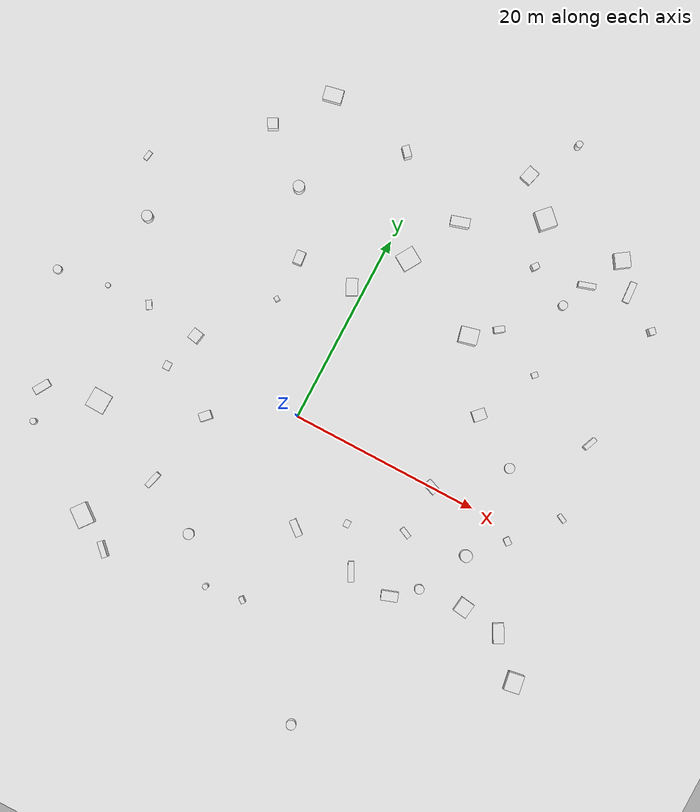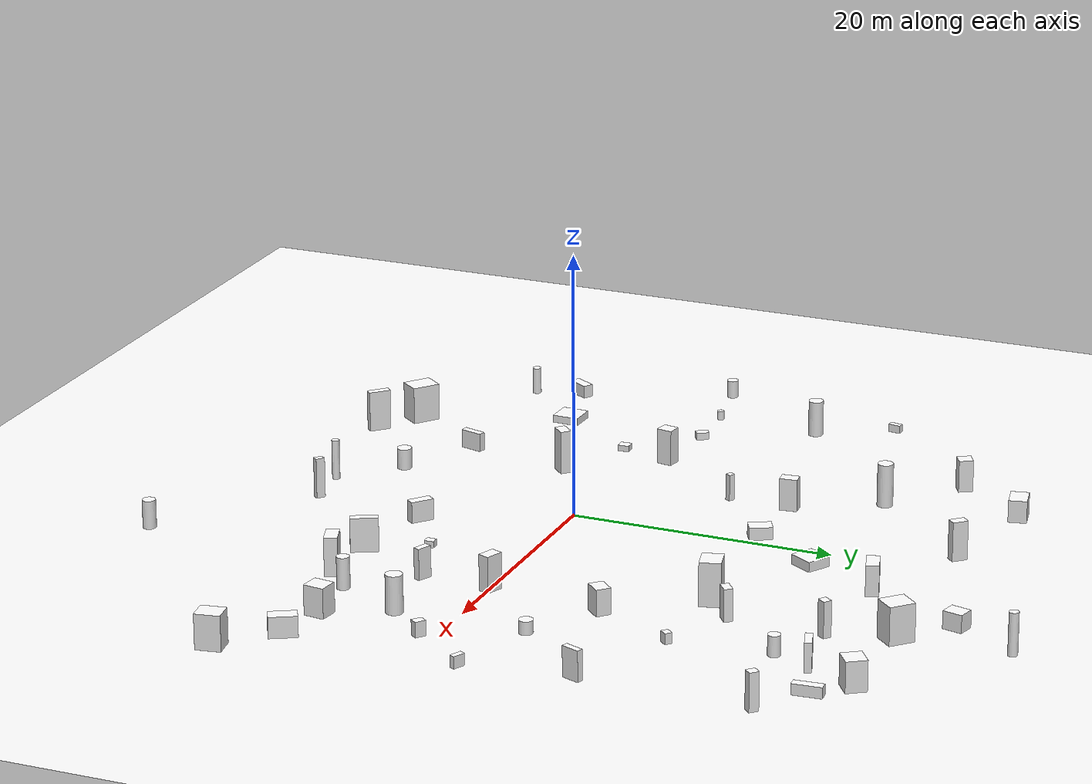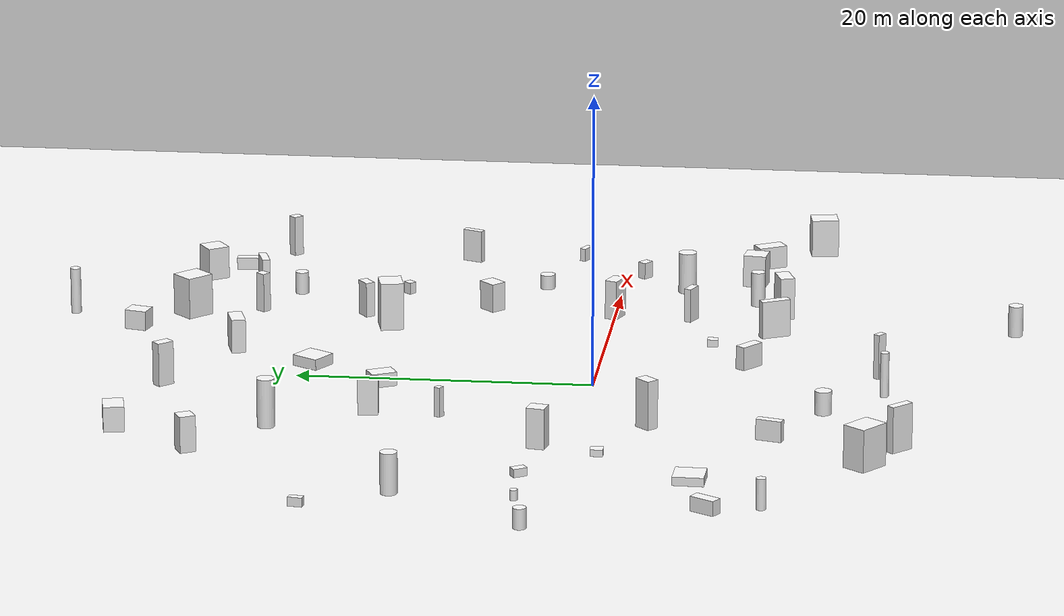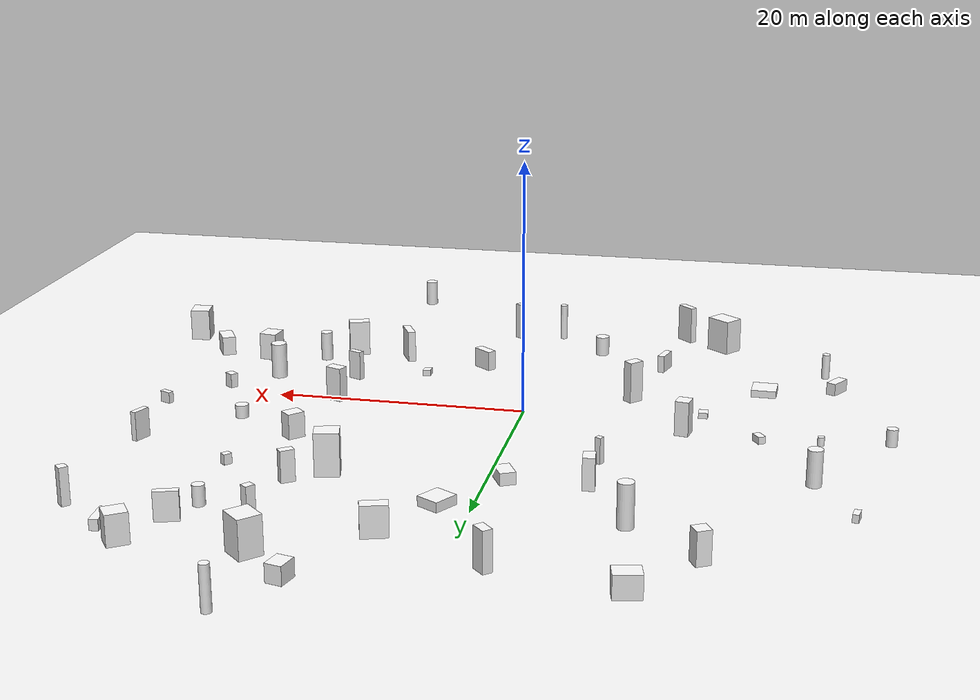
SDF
<?xml version="1.0"?>
<sdf version="1.9">
  <model name="vio_scene">
    <static>true</static>
    <link name="link">
      <visual name="ground">
        <pose>0 0 0.02 0 0 0</pose>
        <geometry><plane><normal>0 0 1</normal><size>80 80</size></plane></geometry>
        <material>
          <ambient>1 1 1 1</ambient><diffuse>1 1 1 1</diffuse><specular>0.05 0.05 0.05 1</specular>
          <pbr><metal>
            <albedo_map>model://vio_scene/materials/textures/ground.jpg</albedo_map>
            <metalness>0.0</metalness><roughness>1.0</roughness>
          </metal></pbr>
        </material>
      </visual>
      <visual name="prop_0">
        <pose>23.77 -9.15 1.16 0 0 3.01</pose>
        <geometry><box><size>1.47 1.59 2.27</size></box></geometry>
        <material>
          <ambient>1 1 1 1</ambient><diffuse>1 1 1 1</diffuse><specular>0.05 0.05 0.05 1</specular>
          <pbr><metal>
            <albedo_map>model://vio_scene/materials/textures/props.jpg</albedo_map>
            <metalness>0.0</metalness><roughness>1.0</roughness>
          </metal></pbr>
        </material>
      </visual>
      <visual name="prop_1">
        <pose>9.30 32.38 0.70 0 0 6.04</pose>
        <geometry><box><size>1.24 1.53 1.35</size></box></geometry>
        <material>
          <ambient>1 1 1 1</ambient><diffuse>1 1 1 1</diffuse><specular>0.05 0.05 0.05 1</specular>
          <pbr><metal>
            <albedo_map>model://vio_scene/materials/textures/props.jpg</albedo_map>
            <metalness>0.0</metalness><roughness>1.0</roughness>
          </metal></pbr>
        </material>
      </visual>
      <visual name="prop_2">
        <pose>15.09 -5.28 1.20 0 0 1.15</pose>
        <geometry><box><size>0.51 1.14 2.37</size></box></geometry>
        <material>
          <ambient>1 1 1 1</ambient><diffuse>1 1 1 1</diffuse><specular>0.05 0.05 0.05 1</specular>
          <pbr><metal>
            <albedo_map>model://vio_scene/materials/textures/props.jpg</albedo_map>
            <metalness>0.0</metalness><roughness>1.0</roughness>
          </metal></pbr>
        </material>
      </visual>
      <visual name="prop_3">
        <pose>-22.75 10.67 1.40 0 0 5.12</pose>
        <geometry><cylinder><radius>0.56</radius><length>2.77</length></cylinder></geometry>
        <material>
          <ambient>1 1 1 1</ambient><diffuse>1 1 1 1</diffuse><specular>0.05 0.05 0.05 1</specular>
          <pbr><metal>
            <albedo_map>model://vio_scene/materials/textures/props.jpg</albedo_map>
            <metalness>0.0</metalness><roughness>1.0</roughness>
          </metal></pbr>
        </material>
      </visual>
      <visual name="prop_4">
        <pose>2.43 19.25 0.40 0 0 5.74</pose>
        <geometry><box><size>1.84 1.98 0.75</size></box></geometry>
        <material>
          <ambient>1 1 1 1</ambient><diffuse>1 1 1 1</diffuse><specular>0.05 0.05 0.05 1</specular>
          <pbr><metal>
            <albedo_map>model://vio_scene/materials/textures/props.jpg</albedo_map>
            <metalness>0.0</metalness><roughness>1.0</roughness>
          </metal></pbr>
        </material>
      </visual>
      <visual name="prop_5">
        <pose>-7.36 9.44 1.03 0 0 5.75</pose>
        <geometry><box><size>0.48 0.45 2.02</size></box></geometry>
        <material>
          <ambient>1 1 1 1</ambient><diffuse>1 1 1 1</diffuse><specular>0.05 0.05 0.05 1</specular>
          <pbr><metal>
            <albedo_map>model://vio_scene/materials/textures/props.jpg</albedo_map>
            <metalness>0.0</metalness><roughness>1.0</roughness>
          </metal></pbr>
        </material>
      </visual>
      <visual name="prop_6">
        <pose>-14.00 -1.64 0.25 0 0 1.59</pose>
        <geometry><box><size>0.85 0.74 0.46</size></box></geometry>
        <material>
          <ambient>1 1 1 1</ambient><diffuse>1 1 1 1</diffuse><specular>0.05 0.05 0.05 1</specular>
          <pbr><metal>
            <albedo_map>model://vio_scene/materials/textures/props.jpg</albedo_map>
            <metalness>0.0</metalness><roughness>1.0</roughness>
          </metal></pbr>
        </material>
      </visual>
      <visual name="prop_7">
        <pose>13.97 -27.66 1.10 0 0 0.24</pose>
        <geometry><cylinder><radius>0.50</radius><length>2.16</length></cylinder></geometry>
        <material>
          <ambient>1 1 1 1</ambient><diffuse>1 1 1 1</diffuse><specular>0.05 0.05 0.05 1</specular>
          <pbr><metal>
            <albedo_map>model://vio_scene/materials/textures/props.jpg</albedo_map>
            <metalness>0.0</metalness><roughness>1.0</roughness>
          </metal></pbr>
        </material>
      </visual>
      <visual name="prop_8">
        <pose>28.36 3.38 0.48 0 0 4.26</pose>
        <geometry><box><size>0.44 0.96 0.91</size></box></geometry>
        <material>
          <ambient>1 1 1 1</ambient><diffuse>1 1 1 1</diffuse><specular>0.05 0.05 0.05 1</specular>
          <pbr><metal>
            <albedo_map>model://vio_scene/materials/textures/props.jpg</albedo_map>
            <metalness>0.0</metalness><roughness>1.0</roughness>
          </metal></pbr>
        </material>
      </visual>
      <visual name="prop_9">
        <pose>11.43 15.16 1.67 0 0 3.38</pose>
        <geometry><box><size>1.86 1.58 3.31</size></box></geometry>
        <material>
          <ambient>1 1 1 1</ambient><diffuse>1 1 1 1</diffuse><specular>0.05 0.05 0.05 1</specular>
          <pbr><metal>
            <albedo_map>model://vio_scene/materials/textures/props.jpg</albedo_map>
            <metalness>0.0</metalness><roughness>1.0</roughness>
          </metal></pbr>
        </material>
      </visual>
      <visual name="prop_10">
        <pose>27.27 11.31 1.17 0 0 1.20</pose>
        <geometry><box><size>1.43 0.47 2.29</size></box></geometry>
        <material>
          <ambient>1 1 1 1</ambient><diffuse>1 1 1 1</diffuse><specular>0.05 0.05 0.05 1</specular>
          <pbr><metal>
            <albedo_map>model://vio_scene/materials/textures/props.jpg</albedo_map>
            <metalness>0.0</metalness><roughness>1.0</roughness>
          </metal></pbr>
        </material>
      </visual>
      <visual name="prop_11">
        <pose>21.53 -4.47 1.46 0 0 6.03</pose>
        <geometry><cylinder><radius>0.63</radius><length>2.89</length></cylinder></geometry>
        <material>
          <ambient>1 1 1 1</ambient><diffuse>1 1 1 1</diffuse><specular>0.05 0.05 0.05 1</specular>
          <pbr><metal>
            <albedo_map>model://vio_scene/materials/textures/props.jpg</albedo_map>
            <metalness>0.0</metalness><roughness>1.0</roughness>
          </metal></pbr>
        </material>
      </visual>
      <visual name="prop_12">
        <pose>-18.53 2.91 0.30 0 0 2.13</pose>
        <geometry><box><size>0.97 0.60 0.56</size></box></geometry>
        <material>
          <ambient>1 1 1 1</ambient><diffuse>1 1 1 1</diffuse><specular>0.05 0.05 0.05 1</specular>
          <pbr><metal>
            <albedo_map>model://vio_scene/materials/textures/props.jpg</albedo_map>
            <metalness>0.0</metalness><roughness>1.0</roughness>
          </metal></pbr>
        </material>
      </visual>
      <visual name="prop_13">
        <pose>5.31 24.91 1.19 0 0 5.01</pose>
        <geometry><box><size>0.96 1.95 2.34</size></box></geometry>
        <material>
          <ambient>1 1 1 1</ambient><diffuse>1 1 1 1</diffuse><specular>0.05 0.05 0.05 1</specular>
          <pbr><metal>
            <albedo_map>model://vio_scene/materials/textures/props.jpg</albedo_map>
            <metalness>0.0</metalness><roughness>1.0</roughness>
          </metal></pbr>
        </material>
      </visual>
      <visual name="prop_14">
        <pose>12.75 29.16 1.46 0 0 0.81</pose>
        <geometry><box><size>1.78 1.99 2.87</size></box></geometry>
        <material>
          <ambient>1 1 1 1</ambient><diffuse>1 1 1 1</diffuse><specular>0.05 0.05 0.05 1</specular>
          <pbr><metal>
            <albedo_map>model://vio_scene/materials/textures/props.jpg</albedo_map>
            <metalness>0.0</metalness><roughness>1.0</roughness>
          </metal></pbr>
        </material>
      </visual>
      <visual name="prop_15">
        <pose>21.34 5.38 0.53 0 0 3.60</pose>
        <geometry><cylinder><radius>0.52</radius><length>1.01</length></cylinder></geometry>
        <material>
          <ambient>1 1 1 1</ambient><diffuse>1 1 1 1</diffuse><specular>0.05 0.05 0.05 1</specular>
          <pbr><metal>
            <albedo_map>model://vio_scene/materials/textures/props.jpg</albedo_map>
            <metalness>0.0</metalness><roughness>1.0</roughness>
          </metal></pbr>
        </material>
      </visual>
      <visual name="prop_16">
        <pose>21.52 29.13 1.16 0 0 0.60</pose>
        <geometry><box><size>1.59 1.54 2.29</size></box></geometry>
        <material>
          <ambient>1 1 1 1</ambient><diffuse>1 1 1 1</diffuse><specular>0.05 0.05 0.05 1</specular>
          <pbr><metal>
            <albedo_map>model://vio_scene/materials/textures/props.jpg</albedo_map>
            <metalness>0.0</metalness><roughness>1.0</roughness>
          </metal></pbr>
        </material>
      </visual>
      <visual name="prop_17">
        <pose>16.62 -11.61 1.50 0 0 5.05</pose>
        <geometry><box><size>0.99 1.70 2.95</size></box></geometry>
        <material>
          <ambient>1 1 1 1</ambient><diffuse>1 1 1 1</diffuse><specular>0.05 0.05 0.05 1</specular>
          <pbr><metal>
            <albedo_map>model://vio_scene/materials/textures/props.jpg</albedo_map>
            <metalness>0.0</metalness><roughness>1.0</roughness>
          </metal></pbr>
        </material>
      </visual>
      <visual name="prop_18">
        <pose>3.76 -18.88 1.56 0 0 5.61</pose>
        <geometry><box><size>0.69 0.45 3.09</size></box></geometry>
        <material>
          <ambient>1 1 1 1</ambient><diffuse>1 1 1 1</diffuse><specular>0.05 0.05 0.05 1</specular>
          <pbr><metal>
            <albedo_map>model://vio_scene/materials/textures/props.jpg</albedo_map>
            <metalness>0.0</metalness><roughness>1.0</roughness>
          </metal></pbr>
        </material>
      </visual>
      <visual name="prop_19">
        <pose>18.96 -9.62 1.23 0 0 1.35</pose>
        <geometry><cylinder><radius>0.48</radius><length>2.42</length></cylinder></geometry>
        <material>
          <ambient>1 1 1 1</ambient><diffuse>1 1 1 1</diffuse><specular>0.05 0.05 0.05 1</specular>
          <pbr><metal>
            <albedo_map>model://vio_scene/materials/textures/props.jpg</albedo_map>
            <metalness>0.0</metalness><roughness>1.0</roughness>
          </metal></pbr>
        </material>
      </visual>
      <visual name="prop_20">
        <pose>-8.14 -4.32 1.68 0 0 2.38</pose>
        <geometry><box><size>0.85 1.22 3.33</size></box></geometry>
        <material>
          <ambient>1 1 1 1</ambient><diffuse>1 1 1 1</diffuse><specular>0.05 0.05 0.05 1</specular>
          <pbr><metal>
            <albedo_map>model://vio_scene/materials/textures/props.jpg</albedo_map>
            <metalness>0.0</metalness><roughness>1.0</roughness>
          </metal></pbr>
        </material>
      </visual>
      <visual name="prop_21">
        <pose>13.83 17.18 1.24 0 0 0.63</pose>
        <geometry><box><size>1.09 0.64 2.44</size></box></geometry>
        <material>
          <ambient>1 1 1 1</ambient><diffuse>1 1 1 1</diffuse><specular>0.05 0.05 0.05 1</specular>
          <pbr><metal>
            <albedo_map>model://vio_scene/materials/textures/props.jpg</albedo_map>
            <metalness>0.0</metalness><roughness>1.0</roughness>
          </metal></pbr>
        </material>
      </visual>
      <visual name="prop_22">
        <pose>-15.97 24.83 1.25 0 0 5.22</pose>
        <geometry><box><size>1.08 1.07 2.45</size></box></geometry>
        <material>
          <ambient>1 1 1 1</ambient><diffuse>1 1 1 1</diffuse><specular>0.05 0.05 0.05 1</specular>
          <pbr><metal>
            <albedo_map>model://vio_scene/materials/textures/props.jpg</albedo_map>
            <metalness>0.0</metalness><roughness>1.0</roughness>
          </metal></pbr>
        </material>
      </visual>
      <visual name="prop_23">
        <pose>-23.21 -12.90 1.06 0 0 1.35</pose>
        <geometry><cylinder><radius>0.32</radius><length>2.07</length></cylinder></geometry>
        <material>
          <ambient>1 1 1 1</ambient><diffuse>1 1 1 1</diffuse><specular>0.05 0.05 0.05 1</specular>
          <pbr><metal>
            <albedo_map>model://vio_scene/materials/textures/props.jpg</albedo_map>
            <metalness>0.0</metalness><roughness>1.0</roughness>
          </metal></pbr>
        </material>
      </visual>
      <visual name="prop_24">
        <pose>-9.84 -12.49 0.73 0 0 2.87</pose>
        <geometry><box><size>0.55 1.75 1.42</size></box></geometry>
        <material>
          <ambient>1 1 1 1</ambient><diffuse>1 1 1 1</diffuse><specular>0.05 0.05 0.05 1</specular>
          <pbr><metal>
            <albedo_map>model://vio_scene/materials/textures/props.jpg</albedo_map>
            <metalness>0.0</metalness><roughness>1.0</roughness>
          </metal></pbr>
        </material>
      </visual>
      <visual name="prop_25">
        <pose>19.56 25.25 1.12 0 0 1.88</pose>
        <geometry><box><size>0.54 1.77 2.20</size></box></geometry>
        <material>
          <ambient>1 1 1 1</ambient><diffuse>1 1 1 1</diffuse><specular>0.05 0.05 0.05 1</specular>
          <pbr><metal>
            <albedo_map>model://vio_scene/materials/textures/props.jpg</albedo_map>
            <metalness>0.0</metalness><roughness>1.0</roughness>
          </metal></pbr>
        </material>
      </visual>
      <visual name="prop_26">
        <pose>19.18 14.86 0.42 0 0 0.84</pose>
        <geometry><box><size>0.64 0.55 0.81</size></box></geometry>
        <material>
          <ambient>1 1 1 1</ambient><diffuse>1 1 1 1</diffuse><specular>0.05 0.05 0.05 1</specular>
          <pbr><metal>
            <albedo_map>model://vio_scene/materials/textures/props.jpg</albedo_map>
            <metalness>0.0</metalness><roughness>1.0</roughness>
          </metal></pbr>
        </material>
      </visual>
      <visual name="prop_27">
        <pose>12.22 37.30 1.62 0 0 1.69</pose>
        <geometry><cylinder><radius>0.35</radius><length>3.21</length></cylinder></geometry>
        <material>
          <ambient>1 1 1 1</ambient><diffuse>1 1 1 1</diffuse><specular>0.05 0.05 0.05 1</specular>
          <pbr><metal>
            <albedo_map>model://vio_scene/materials/textures/props.jpg</albedo_map>
            <metalness>0.0</metalness><roughness>1.0</roughness>
          </metal></pbr>
        </material>
      </visual>
      <visual name="prop_28">
        <pose>-2.73 28.57 1.51 0 0 3.89</pose>
        <geometry><box><size>0.74 1.18 2.98</size></box></geometry>
        <material>
          <ambient>1 1 1 1</ambient><diffuse>1 1 1 1</diffuse><specular>0.05 0.05 0.05 1</specular>
          <pbr><metal>
            <albedo_map>model://vio_scene/materials/textures/props.jpg</albedo_map>
            <metalness>0.0</metalness><roughness>1.0</roughness>
          </metal></pbr>
        </material>
      </visual>
      <visual name="prop_29">
        <pose>-10.97 -20.95 1.59 0 0 2.36</pose>
        <geometry><box><size>1.68 0.57 3.14</size></box></geometry>
        <material>
          <ambient>1 1 1 1</ambient><diffuse>1 1 1 1</diffuse><specular>0.05 0.05 0.05 1</specular>
          <pbr><metal>
            <albedo_map>model://vio_scene/materials/textures/props.jpg</albedo_map>
            <metalness>0.0</metalness><roughness>1.0</roughness>
          </metal></pbr>
        </material>
      </visual>
      <visual name="prop_30">
        <pose>31.72 -13.43 1.35 0 0 4.88</pose>
        <geometry><box><size>1.89 1.61 2.65</size></box></geometry>
        <material>
          <ambient>1 1 1 1</ambient><diffuse>1 1 1 1</diffuse><specular>0.05 0.05 0.05 1</specular>
          <pbr><metal>
            <albedo_map>model://vio_scene/materials/textures/props.jpg</albedo_map>
            <metalness>0.0</metalness><roughness>1.0</roughness>
          </metal></pbr>
        </material>
      </visual>
      <visual name="prop_31">
        <pose>18.40 22.38 0.79 0 0 0.40</pose>
        <geometry><cylinder><radius>0.46</radius><length>1.55</length></cylinder></geometry>
        <material>
          <ambient>1 1 1 1</ambient><diffuse>1 1 1 1</diffuse><specular>0.05 0.05 0.05 1</specular>
          <pbr><metal>
            <albedo_map>model://vio_scene/materials/textures/props.jpg</albedo_map>
            <metalness>0.0</metalness><roughness>1.0</roughness>
          </metal></pbr>
        </material>
      </visual>
      <visual name="prop_32">
        <pose>15.24 0.02 1.39 0 0 1.20</pose>
        <geometry><box><size>0.88 1.37 2.75</size></box></geometry>
        <material>
          <ambient>1 1 1 1</ambient><diffuse>1 1 1 1</diffuse><specular>0.05 0.05 0.05 1</specular>
          <pbr><metal>
            <albedo_map>model://vio_scene/materials/textures/props.jpg</albedo_map>
            <metalness>0.0</metalness><roughness>1.0</roughness>
          </metal></pbr>
        </material>
      </visual>
      <visual name="prop_33">
        <pose>14.07 24.45 1.38 0 0 5.63</pose>
        <geometry><box><size>0.63 0.73 2.72</size></box></geometry>
        <material>
          <ambient>1 1 1 1</ambient><diffuse>1 1 1 1</diffuse><specular>0.05 0.05 0.05 1</specular>
          <pbr><metal>
            <albedo_map>model://vio_scene/materials/textures/props.jpg</albedo_map>
            <metalness>0.0</metalness><roughness>1.0</roughness>
          </metal></pbr>
        </material>
      </visual>
      <visual name="prop_34">
        <pose>-14.37 -18.89 1.46 0 0 4.05</pose>
        <geometry><box><size>1.70 2.19 2.88</size></box></geometry>
        <material>
          <ambient>1 1 1 1</ambient><diffuse>1 1 1 1</diffuse><specular>0.05 0.05 0.05 1</specular>
          <pbr><metal>
            <albedo_map>model://vio_scene/materials/textures/props.jpg</albedo_map>
            <metalness>0.0</metalness><roughness>1.0</roughness>
          </metal></pbr>
        </material>
      </visual>
      <visual name="prop_35">
        <pose>-10.65 20.40 1.68 0 0 5.29</pose>
        <geometry><cylinder><radius>0.59</radius><length>3.31</length></cylinder></geometry>
        <material>
          <ambient>1 1 1 1</ambient><diffuse>1 1 1 1</diffuse><specular>0.05 0.05 0.05 1</specular>
          <pbr><metal>
            <albedo_map>model://vio_scene/materials/textures/props.jpg</albedo_map>
            <metalness>0.0</metalness><roughness>1.0</roughness>
          </metal></pbr>
        </material>
      </visual>
      <visual name="prop_36">
        <pose>5.13 -10.02 0.83 0 0 4.03</pose>
        <geometry><box><size>0.73 1.77 1.62</size></box></geometry>
        <material>
          <ambient>1 1 1 1</ambient><diffuse>1 1 1 1</diffuse><specular>0.05 0.05 0.05 1</specular>
          <pbr><metal>
            <albedo_map>model://vio_scene/materials/textures/props.jpg</albedo_map>
            <metalness>0.0</metalness><roughness>1.0</roughness>
          </metal></pbr>
        </material>
      </visual>
      <visual name="prop_37">
        <pose>-12.79 2.33 1.39 0 0 4.53</pose>
        <geometry><box><size>1.20 1.08 2.75</size></box></geometry>
        <material>
          <ambient>1 1 1 1</ambient><diffuse>1 1 1 1</diffuse><specular>0.05 0.05 0.05 1</specular>
          <pbr><metal>
            <albedo_map>model://vio_scene/materials/textures/props.jpg</albedo_map>
            <metalness>0.0</metalness><roughness>1.0</roughness>
          </metal></pbr>
        </material>
      </visual>
      <visual name="prop_38">
        <pose>-11.98 30.26 0.87 0 0 0.21</pose>
        <geometry><box><size>1.92 1.38 1.70</size></box></geometry>
        <material>
          <ambient>1 1 1 1</ambient><diffuse>1 1 1 1</diffuse><specular>0.05 0.05 0.05 1</specular>
          <pbr><metal>
            <albedo_map>model://vio_scene/materials/textures/props.jpg</albedo_map>
            <metalness>0.0</metalness><roughness>1.0</roughness>
          </metal></pbr>
        </material>
      </visual>
      <visual name="prop_39">
        <pose>-4.12 -15.60 0.82 0 0 3.44</pose>
        <geometry><cylinder><radius>0.56</radius><length>1.60</length></cylinder></geometry>
        <material>
          <ambient>1 1 1 1</ambient><diffuse>1 1 1 1</diffuse><specular>0.05 0.05 0.05 1</specular>
          <pbr><metal>
            <albedo_map>model://vio_scene/materials/textures/props.jpg</albedo_map>
            <metalness>0.0</metalness><roughness>1.0</roughness>
          </metal></pbr>
        </material>
      </visual>
      <visual name="prop_40">
        <pose>28.08 -9.82 0.81 0 0 5.22</pose>
        <geometry><box><size>2.06 1.10 1.58</size></box></geometry>
        <material>
          <ambient>1 1 1 1</ambient><diffuse>1 1 1 1</diffuse><specular>0.05 0.05 0.05 1</specular>
          <pbr><metal>
            <albedo_map>model://vio_scene/materials/textures/props.jpg</albedo_map>
            <metalness>0.0</metalness><roughness>1.0</roughness>
          </metal></pbr>
        </material>
      </visual>
      <visual name="prop_41">
        <pose>23.74 26.73 0.43 0 0 4.78</pose>
        <geometry><box><size>2.19 0.67 0.83</size></box></geometry>
        <material>
          <ambient>1 1 1 1</ambient><diffuse>1 1 1 1</diffuse><specular>0.05 0.05 0.05 1</specular>
          <pbr><metal>
            <albedo_map>model://vio_scene/materials/textures/props.jpg</albedo_map>
            <metalness>0.0</metalness><roughness>1.0</roughness>
          </metal></pbr>
        </material>
      </visual>
      <visual name="prop_42">
        <pose>12.07 -11.26 1.32 0 0 5.18</pose>
        <geometry><box><size>2.06 0.62 2.61</size></box></geometry>
        <material>
          <ambient>1 1 1 1</ambient><diffuse>1 1 1 1</diffuse><specular>0.05 0.05 0.05 1</specular>
          <pbr><metal>
            <albedo_map>model://vio_scene/materials/textures/props.jpg</albedo_map>
            <metalness>0.0</metalness><roughness>1.0</roughness>
          </metal></pbr>
        </material>
      </visual>
      <visual name="prop_43">
        <pose>-23.11 2.70 0.36 0 0 6.20</pose>
        <geometry><cylinder><radius>0.26</radius><length>0.68</length></cylinder></geometry>
        <material>
          <ambient>1 1 1 1</ambient><diffuse>1 1 1 1</diffuse><specular>0.05 0.05 0.05 1</specular>
          <pbr><metal>
            <albedo_map>model://vio_scene/materials/textures/props.jpg</albedo_map>
            <metalness>0.0</metalness><roughness>1.0</roughness>
          </metal></pbr>
        </material>
      </visual>
      <visual name="prop_44">
        <pose>-1.26 14.08 0.49 0 0 3.61</pose>
        <geometry><box><size>1.20 1.75 0.95</size></box></geometry>
        <material>
          <ambient>1 1 1 1</ambient><diffuse>1 1 1 1</diffuse><specular>0.05 0.05 0.05 1</specular>
          <pbr><metal>
            <albedo_map>model://vio_scene/materials/textures/props.jpg</albedo_map>
            <metalness>0.0</metalness><roughness>1.0</roughness>
          </metal></pbr>
        </material>
      </visual>
      <visual name="prop_45">
        <pose>-24.15 -9.47 0.52 0 0 5.74</pose>
        <geometry><box><size>0.79 1.78 0.99</size></box></geometry>
        <material>
          <ambient>1 1 1 1</ambient><diffuse>1 1 1 1</diffuse><specular>0.05 0.05 0.05 1</specular>
          <pbr><metal>
            <albedo_map>model://vio_scene/materials/textures/props.jpg</albedo_map>
            <metalness>0.0</metalness><roughness>1.0</roughness>
          </metal></pbr>
        </material>
      </visual>
      <visual name="prop_46">
        <pose>-25.69 16.16 0.32 0 0 2.97</pose>
        <geometry><box><size>0.46 0.96 0.61</size></box></geometry>
        <material>
          <ambient>1 1 1 1</ambient><diffuse>1 1 1 1</diffuse><specular>0.05 0.05 0.05 1</specular>
          <pbr><metal>
            <albedo_map>model://vio_scene/materials/textures/props.jpg</albedo_map>
            <metalness>0.0</metalness><roughness>1.0</roughness>
          </metal></pbr>
        </material>
      </visual>
      <visual name="prop_47">
        <pose>-28.29 1.74 0.70 0 0 4.52</pose>
        <geometry><cylinder><radius>0.43</radius><length>1.37</length></cylinder></geometry>
        <material>
          <ambient>1 1 1 1</ambient><diffuse>1 1 1 1</diffuse><specular>0.05 0.05 0.05 1</specular>
          <pbr><metal>
            <albedo_map>model://vio_scene/materials/textures/props.jpg</albedo_map>
            <metalness>0.0</metalness><roughness>1.0</roughness>
          </metal></pbr>
        </material>
      </visual>
      <visual name="prop_48">
        <pose>-18.43 -8.01 0.31 0 0 6.25</pose>
        <geometry><box><size>2.00 2.05 0.58</size></box></geometry>
        <material>
          <ambient>1 1 1 1</ambient><diffuse>1 1 1 1</diffuse><specular>0.05 0.05 0.05 1</specular>
          <pbr><metal>
            <albedo_map>model://vio_scene/materials/textures/props.jpg</albedo_map>
            <metalness>0.0</metalness><roughness>1.0</roughness>
          </metal></pbr>
        </material>
      </visual>
      <visual name="prop_49">
        <pose>24.58 -1.23 0.60 0 0 2.48</pose>
        <geometry><box><size>0.81 0.62 1.16</size></box></geometry>
        <material>
          <ambient>1 1 1 1</ambient><diffuse>1 1 1 1</diffuse><specular>0.05 0.05 0.05 1</specular>
          <pbr><metal>
            <albedo_map>model://vio_scene/materials/textures/props.jpg</albedo_map>
            <metalness>0.0</metalness><roughness>1.0</roughness>
          </metal></pbr>
        </material>
      </visual>
      <visual name="prop_50">
        <pose>9.49 -7.23 0.27 0 0 3.16</pose>
        <geometry><box><size>0.62 0.72 0.50</size></box></geometry>
        <material>
          <ambient>1 1 1 1</ambient><diffuse>1 1 1 1</diffuse><specular>0.05 0.05 0.05 1</specular>
          <pbr><metal>
            <albedo_map>model://vio_scene/materials/textures/props.jpg</albedo_map>
            <metalness>0.0</metalness><roughness>1.0</roughness>
          </metal></pbr>
        </material>
      </visual>
      <visual name="prop_51">
        <pose>-0.12 -19.41 1.55 0 0 3.04</pose>
        <geometry><cylinder><radius>0.29</radius><length>3.07</length></cylinder></geometry>
        <material>
          <ambient>1 1 1 1</ambient><diffuse>1 1 1 1</diffuse><specular>0.05 0.05 0.05 1</specular>
          <pbr><metal>
            <albedo_map>model://vio_scene/materials/textures/props.jpg</albedo_map>
            <metalness>0.0</metalness><roughness>1.0</roughness>
          </metal></pbr>
        </material>
      </visual>
      <visual name="prop_52">
        <pose>-7.29 14.14 1.26 0 0 1.67</pose>
        <geometry><box><size>1.35 0.91 2.48</size></box></geometry>
        <material>
          <ambient>1 1 1 1</ambient><diffuse>1 1 1 1</diffuse><specular>0.05 0.05 0.05 1</specular>
          <pbr><metal>
            <albedo_map>model://vio_scene/materials/textures/props.jpg</albedo_map>
            <metalness>0.0</metalness><roughness>1.0</roughness>
          </metal></pbr>
        </material>
      </visual>
      <visual name="prop_53">
        <pose>16.09 8.66 1.02 0 0 3.95</pose>
        <geometry><box><size>1.37 1.11 2.00</size></box></geometry>
        <material>
          <ambient>1 1 1 1</ambient><diffuse>1 1 1 1</diffuse><specular>0.05 0.05 0.05 1</specular>
          <pbr><metal>
            <albedo_map>model://vio_scene/materials/textures/props.jpg</albedo_map>
            <metalness>0.0</metalness><roughness>1.0</roughness>
          </metal></pbr>
        </material>
      </visual>
      <visual name="prop_54">
        <pose>27.46 24.16 1.45 0 0 5.49</pose>
        <geometry><box><size>0.72 0.65 2.85</size></box></geometry>
        <material>
          <ambient>1 1 1 1</ambient><diffuse>1 1 1 1</diffuse><specular>0.05 0.05 0.05 1</specular>
          <pbr><metal>
            <albedo_map>model://vio_scene/materials/textures/props.jpg</albedo_map>
            <metalness>0.0</metalness><roughness>1.0</roughness>
          </metal></pbr>
        </material>
      </visual>
    </link>
  </model>
</sdf>
